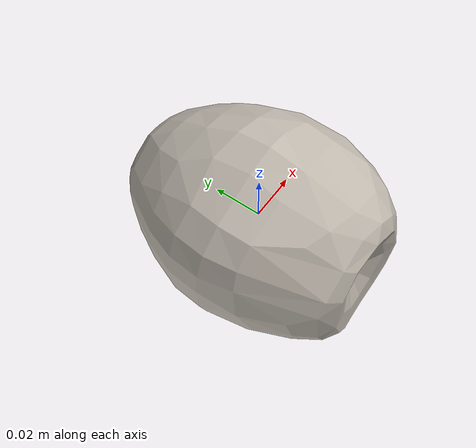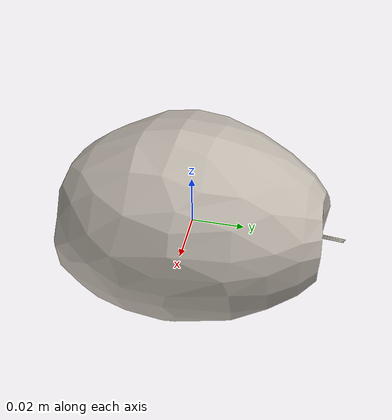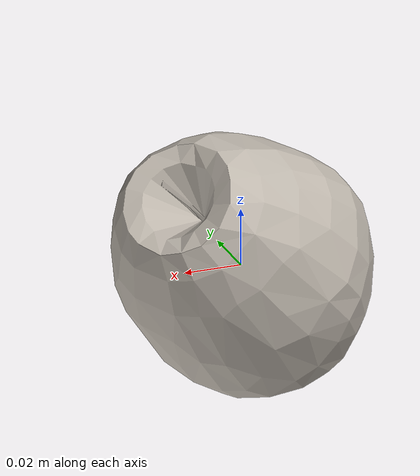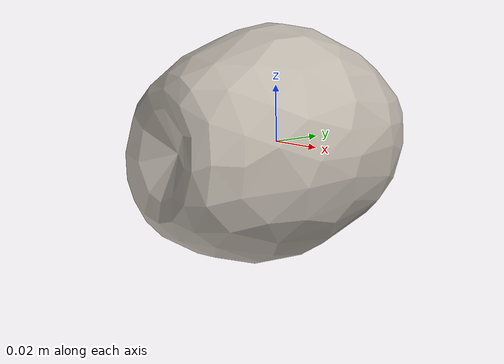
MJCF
<mujoco model="Apple_17">
  <compiler autolimits="true" boundmass="0.01" angle="radian"/>
  <default>
    <default class="/">
      <default class="__VISUAL_MJT__">
        <geom contype="0" conaffinity="0" group="0"/>
      </default>
      <default class="__STRUCTURAL_MJT__">
        <geom contype="8" conaffinity="15" group="4" friction="0.90000000000000002 0.90000000000000002 0.001" solref="0.025000000000000001 1" solimp="0.998 0.998 0.001"/>
      </default>
      <default class="__DYNAMIC_MJT__">
        <geom contype="1" conaffinity="15" group="4" friction="0.90000000000000002 0.90000000000000002 0.001" solref="0.025000000000000001 1" solimp="0.998 0.998 0.001"/>
      </default>
    </default>
  </default>
  <asset>
    <texture name="Apple2_Mat2" type="2d" file="Apple2_AlbedoTransparency2.png"/>
    <material name="material_Apple2_Mat2" class="/" texture="Apple2_Mat2" specular="0.5" shininess="0.5" rgba="1 1 1 1"/>
    <mesh name="Apple_17_apple_b2" class="/" file="Apple_17_apple_b2/Apple_17_apple_b2.obj" scale="1 1 1"/>
  </asset>
  <worldbody>
    <body name="Apple_17">
      <joint name="Apple_17_free" class="/" type="free" pos="0 0 0" axis="0 0 1" stiffness="0" range="0 0" armature="0" damping="0.10000000000000001" frictionloss="0"/>
      <body name="Apple_17_apple_b2" pos="-0 0.0082199999999999999 0" quat="1 0 0 0">
        <geom name="Apple_17_apple_b2" class="__VISUAL_MJT__" type="mesh" material="material_Apple2_Mat2" shellinertia="false" mesh="Apple_17_apple_b2"/>
        <geom name="Apple_17_PrimitiveCollider_0" class="__DYNAMIC_MJT__" type="capsule" size="0.042172230780124664 0.012391887605190277" rgba="0 1 0 1" pos="-0 -0.008218720555305481 0" quat="0.70710678118654757 0.70710678118654746 0 0"/>
      </body>
    </body>
  </worldbody>
</mujoco>
